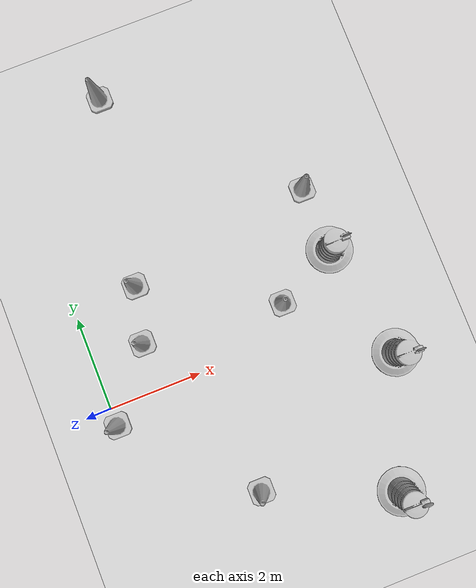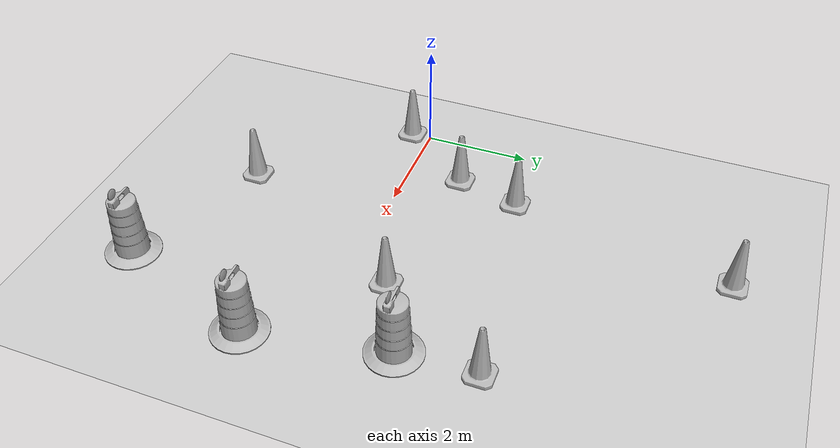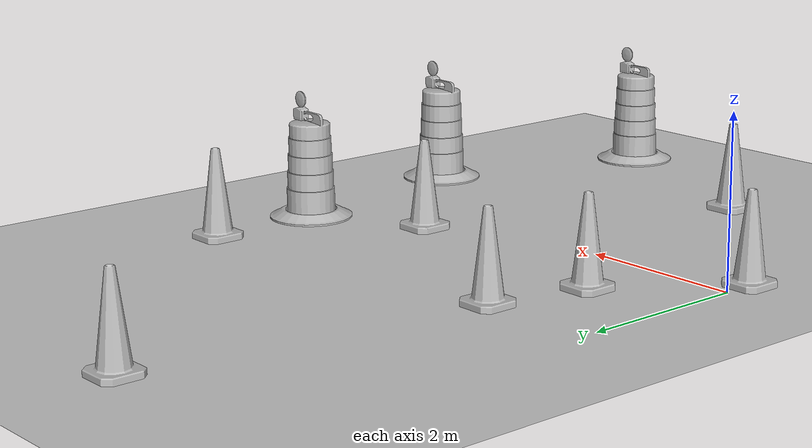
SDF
<sdf version="1.7">
 <world name="default">
  <light name="sun" type="directional">
   <pose>0 0 10 0 -0 0</pose>
   <diffuse>0.8 0.8 0.8 1</diffuse>
   <specular>0.2 0.2 0.2 1</specular>
   <attenuation>
    <range>1000</range>
    <constant>0.9</constant>
    <linear>0.01</linear>
    <quadratic>0.001</quadratic>
   </attenuation>
   <direction>-0.5 0.1 -0.9</direction>
   <spot><inner_angle>0</inner_angle><outer_angle>0</outer_angle><falloff>0</falloff></spot>
  </light>
  <model name="ground_plane">
   <static>1</static>
   <link name="link">
    <collision name="collision">
     <geometry><plane><normal>0 0 1</normal><size>100 100</size></plane></geometry>
     <surface>
      <contact><collide_bitmask>65535</collide_bitmask></contact>
      <friction><ode><mu>100</mu><mu2>50</mu2></ode></friction>
     </surface>
    </collision>
    <visual name="visual">
     <cast_shadows>0</cast_shadows>
     <geometry><plane><normal>0 0 1</normal><size>100 100</size></plane></geometry>
     <material>
      <script><uri>file://media/materials/scripts/gazebo.material</uri><name>Gazebo/Grey</name></script>
     </material>
    </visual>
   </link>
  </model>
  <gravity>0 0 -9.8</gravity>
  <magnetic_field>6e-06 2.3e-05 -4.2e-05</magnetic_field>
  <atmosphere type="adiabatic"/>
  <physics type="ode">
   <max_step_size>0.001</max_step_size>
   <real_time_factor>1</real_time_factor>
   <real_time_update_rate>1000</real_time_update_rate>
  </physics>
  <scene><ambient>0.4 0.4 0.4 1</ambient><background>0.7 0.7 0.7 1</background><shadows>1</shadows></scene>
  <spherical_coordinates>
   <surface_model>EARTH_WGS84</surface_model>
   <latitude_deg>0</latitude_deg>
   <longitude_deg>0</longitude_deg>
   <elevation>0</elevation>
   <heading_deg>0</heading_deg>
  </spherical_coordinates>
  <model name="Construction Cone">
   <link name="link">
    <collision name="collision">
     <geometry>
      <mesh><scale>10 10 10</scale><uri>model://construction_cone/meshes/construction_cone.dae</uri></mesh>
     </geometry>
    </collision>
    <visual name="visual">
     <geometry>
      <mesh><scale>10 10 10</scale><uri>model://construction_cone/meshes/construction_cone.dae</uri></mesh>
     </geometry>
    </visual>
    <inertial>
     <inertia><ixx>1</ixx><ixy>0</ixy><ixz>0</ixz><iyy>1</iyy><iyz>0</iyz><izz>1</izz></inertia>
     <mass>1</mass>
    </inertial>
   </link>
   <pose>1.1066 1.02875 -0 0 -0 0</pose>
  </model>
  <model name="Construction Barrel_0">
   <link name="link">
    <inertial>
     <pose>0 0 0.4 0 -0 0</pose>
     <mass>500</mass>
     <inertia><ixx>51.2096</ixx><iyy>51.2096</iyy><izz>25</izz><ixy>0</ixy><ixz>0</ixz><iyz>0</iyz></inertia>
    </inertial>
    <collision name="collision">
     <geometry><mesh><uri>model://construction_barrel/meshes/construction_barrel.dae</uri></mesh></geometry>
    </collision>
    <visual name="visual">
     <geometry><mesh><uri>model://construction_barrel/meshes/construction_barrel.dae</uri></mesh></geometry>
    </visual>
   </link>
   <pose>5.52913 1.44017 -3e-06 -6e-06 -5e-06 -1.9e-05</pose>
  </model>
  <model name="Construction Cone_0">
   <link name="link">
    <collision name="collision">
     <geometry>
      <mesh><scale>10 10 10</scale><uri>model://construction_cone/meshes/construction_cone.dae</uri></mesh>
     </geometry>
    </collision>
    <visual name="visual">
     <geometry>
      <mesh><scale>10 10 10</scale><uri>model://construction_cone/meshes/construction_cone.dae</uri></mesh>
     </geometry>
    </visual>
    <inertial>
     <inertia><ixx>1</ixx><ixy>0</ixy><ixz>0</ixz><iyy>1</iyy><iyz>0</iyz><izz>1</izz></inertia>
     <mass>1</mass>
    </inertial>
   </link>
   <pose>1.39248 2.22305 -1e-05 0 -0 0</pose>
  </model>
  <model name="Construction Cone_1">
   <link name="link">
    <collision name="collision">
     <geometry>
      <mesh><scale>10 10 10</scale><uri>model://construction_cone/meshes/construction_cone.dae</uri></mesh>
     </geometry>
    </collision>
    <visual name="visual">
     <geometry>
      <mesh><scale>10 10 10</scale><uri>model://construction_cone/meshes/construction_cone.dae</uri></mesh>
     </geometry>
    </visual>
    <inertial>
     <inertia><ixx>1</ixx><ixy>0</ixy><ixz>0</ixz><iyy>1</iyy><iyz>0</iyz><izz>1</izz></inertia>
     <mass>1</mass>
    </inertial>
   </link>
   <pose>4.17535 0.743052 -0 0 -1e-06 0</pose>
  </model>
  <model name="Construction Cone_2">
   <link name="link">
    <collision name="collision">
     <geometry>
      <mesh><scale>10 10 10</scale><uri>model://construction_cone/meshes/construction_cone.dae</uri></mesh>
     </geometry>
    </collision>
    <visual name="visual">
     <geometry>
      <mesh><scale>10 10 10</scale><uri>model://construction_cone/meshes/construction_cone.dae</uri></mesh>
     </geometry>
    </visual>
    <inertial>
     <inertia><ixx>1</ixx><ixy>0</ixy><ixz>0</ixz><iyy>1</iyy><iyz>0</iyz><izz>1</izz></inertia>
     <mass>1</mass>
    </inertial>
   </link>
   <pose>5.47229 2.86716 -0 0 -0 0</pose>
  </model>
  <model name="Construction Cone_3">
   <link name="link">
    <collision name="collision">
     <geometry>
      <mesh><scale>10 10 10</scale><uri>model://construction_cone/meshes/construction_cone.dae</uri></mesh>
     </geometry>
    </collision>
    <visual name="visual">
     <geometry>
      <mesh><scale>10 10 10</scale><uri>model://construction_cone/meshes/construction_cone.dae</uri></mesh>
     </geometry>
    </visual>
    <inertial>
     <inertia><ixx>1</ixx><ixy>0</ixy><ixz>0</ixz><iyy>1</iyy><iyz>0</iyz><izz>1</izz></inertia>
     <mass>1</mass>
    </inertial>
   </link>
   <pose>2.10831 6.32048 -1e-05 -1e-06 0 0</pose>
  </model>
  <model name="Construction Cone_4">
   <link name="link">
    <collision name="collision">
     <geometry>
      <mesh><scale>10 10 10</scale><uri>model://construction_cone/meshes/construction_cone.dae</uri></mesh>
     </geometry>
    </collision>
    <visual name="visual">
     <geometry>
      <mesh><scale>10 10 10</scale><uri>model://construction_cone/meshes/construction_cone.dae</uri></mesh>
     </geometry>
    </visual>
    <inertial>
     <inertia><ixx>1</ixx><ixy>0</ixy><ixz>0</ixz><iyy>1</iyy><iyz>0</iyz><izz>1</izz></inertia>
     <mass>1</mass>
    </inertial>
   </link>
   <pose>0.022726 -0.380336 -0 0 -0 0</pose>
  </model>
  <model name="Construction Barrel_1">
   <link name="link">
    <inertial>
     <pose>0 0 0.4 0 -0 0</pose>
     <mass>500</mass>
     <inertia><ixx>51.2096</ixx><iyy>51.2096</iyy><izz>25</izz><ixy>0</ixy><ixz>0</ixz><iyz>0</iyz></inertia>
    </inertial>
    <collision name="collision">
     <geometry><mesh><uri>model://construction_barrel/meshes/construction_barrel.dae</uri></mesh></geometry>
    </collision>
    <visual name="visual">
     <geometry><mesh><uri>model://construction_barrel/meshes/construction_barrel.dae</uri></mesh></geometry>
    </visual>
   </link>
   <pose>5.01992 -3.79719 0 0 0 -6e-06</pose>
  </model>
  <model name="Construction Cone_5">
   <link name="link">
    <collision name="collision">
     <geometry>
      <mesh><scale>10 10 10</scale><uri>model://construction_cone/meshes/construction_cone.dae</uri></mesh>
     </geometry>
    </collision>
    <visual name="visual">
     <geometry>
      <mesh><scale>10 10 10</scale><uri>model://construction_cone/meshes/construction_cone.dae</uri></mesh>
     </geometry>
    </visual>
    <inertial>
     <inertia><ixx>1</ixx><ixy>0</ixy><ixz>0</ixz><iyy>1</iyy><iyz>0</iyz><izz>1</izz></inertia>
     <mass>1</mass>
    </inertial>
   </link>
   <pose>2.32325 -2.72811 0 0 -0 0</pose>
  </model>
  <model name="Construction Barrel">
   <link name="link">
    <inertial>
     <pose>0 0 0.4 0 -0 0</pose>
     <mass>500</mass>
     <inertia><ixx>51.2096</ixx><iyy>51.2096</iyy><izz>25</izz><ixy>0</ixy><ixz>0</ixz><iyz>0</iyz></inertia>
    </inertial>
    <collision name="collision">
     <geometry><mesh><uri>model://construction_barrel/meshes/construction_barrel.dae</uri></mesh></geometry>
    </collision>
    <visual name="visual">
     <geometry><mesh><uri>model://construction_barrel/meshes/construction_barrel.dae</uri></mesh></geometry>
    </visual>
   </link>
   <pose>6.00733 -1.09719 1e-06 3e-06 2e-06 -4e-06</pose>
  </model>
 </world>
</sdf>
